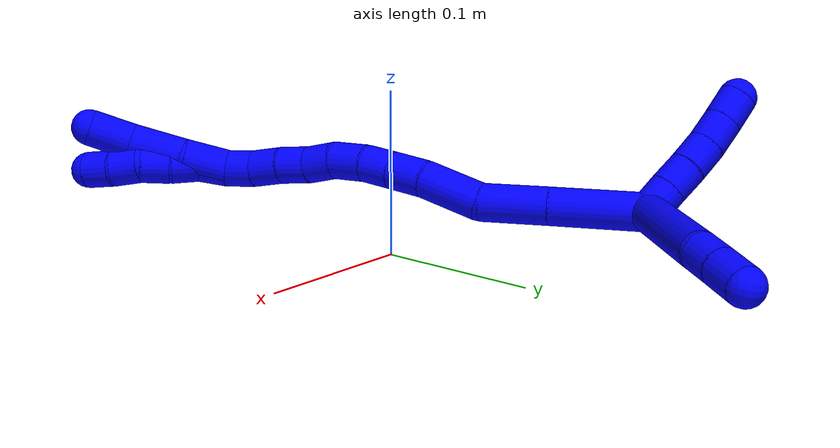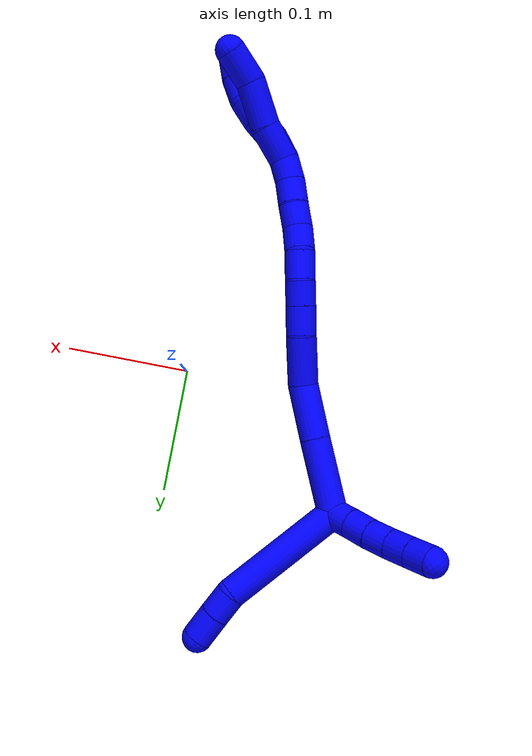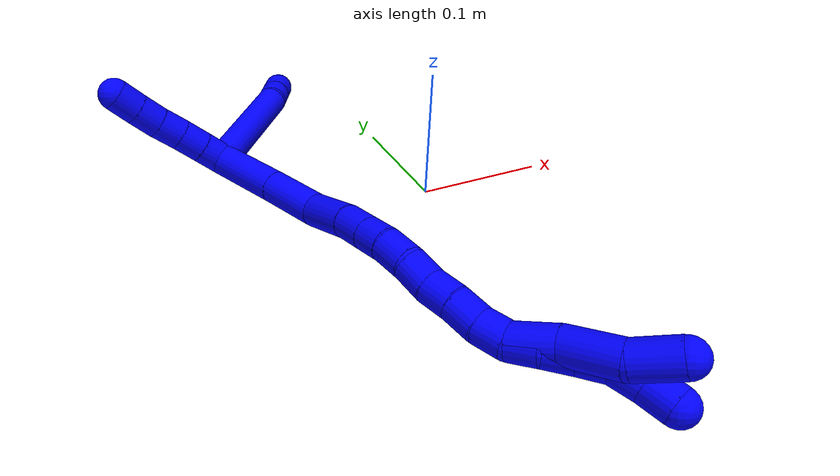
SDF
<sdf version="1.7">
 <world name="default">
  <model name="1">
   <static>0</static>
   <link name="1">
    <collision name="collision-cylinder-e_1_2_8">
     <pose>0.043706 0.028571 -0.001421 -1.62049 0.991251 -1.0334</pose>
     <geometry><cylinder><radius>0.0125</radius><length>0.10447</length></cylinder></geometry>
     <surface>
      <friction><ode><mu>1.16</mu><mu2>1.16</mu2><slip1>0</slip1><slip2>0</slip2></ode></friction>
      <contact><ode><kp>1e+06</kp><kd>1</kd><max_vel>0</max_vel><min_depth>0.001</min_depth></ode></contact>
     </surface>
    </collision>
    <visual name="visual-cylinder-e_1_2_8">
     <pose>0.043706 0.028571 -0.001421 -1.62049 0.991251 -1.0334</pose>
     <geometry><cylinder><radius>0.0125</radius><length>0.10447</length></cylinder></geometry>
     <material><ambient>0 0 1 1</ambient></material>
    </visual>
    <collision name="collision-cylinder-e_2_8_9">
     <pose>0.096751 0.061238 -0.006107 -2.24374 1.05966 -1.76497</pose>
     <geometry><cylinder><radius>0.0125</radius><length>0.021417</length></cylinder></geometry>
     <surface>
      <friction><ode><mu>1.16</mu><mu2>1.16</mu2><slip1>0</slip1><slip2>0</slip2></ode></friction>
      <contact><ode><kp>1e+06</kp><kd>1</kd><max_vel>0</max_vel><min_depth>0.001</min_depth></ode></contact>
     </surface>
    </collision>
    <visual name="visual-cylinder-e_2_8_9">
     <pose>0.096751 0.061238 -0.006107 -2.24374 1.05966 -1.76497</pose>
     <geometry><cylinder><radius>0.0125</radius><length>0.021417</length></cylinder></geometry>
     <material><ambient>0 0 1 1</ambient></material>
    </visual>
    <collision name="collision-cylinder-e_3_9_6">
     <pose>0.116647 0.069705 -0.013222 -2.29293 1.06658 -1.83517</pose>
     <geometry><cylinder><radius>0.0125</radius><length>0.024113</length></cylinder></geometry>
     <surface>
      <friction><ode><mu>1.16</mu><mu2>1.16</mu2><slip1>0</slip1><slip2>0</slip2></ode></friction>
      <contact><ode><kp>1e+06</kp><kd>1</kd><max_vel>0</max_vel><min_depth>0.001</min_depth></ode></contact>
     </surface>
    </collision>
    <visual name="visual-cylinder-e_3_9_6">
     <pose>0.116647 0.069705 -0.013222 -2.29293 1.06658 -1.83517</pose>
     <geometry><cylinder><radius>0.0125</radius><length>0.024113</length></cylinder></geometry>
     <material><ambient>0 0 1 1</ambient></material>
    </visual>
    <collision name="collision-cylinder-e_1_2_10">
     <pose>-0.006735 0.004429 -0.005918 -2.49905 -0.738948 1.72177</pose>
     <geometry><cylinder><radius>0.0125</radius><length>0.02</length></cylinder></geometry>
     <surface>
      <friction><ode><mu>1.16</mu><mu2>1.16</mu2><slip1>0</slip1><slip2>0</slip2></ode></friction>
      <contact><ode><kp>1e+06</kp><kd>1</kd><max_vel>0</max_vel><min_depth>0.001</min_depth></ode></contact>
     </surface>
    </collision>
    <visual name="visual-cylinder-e_1_2_10">
     <pose>-0.006735 0.004429 -0.005918 -2.49905 -0.738948 1.72177</pose>
     <geometry><cylinder><radius>0.0125</radius><length>0.02</length></cylinder></geometry>
     <material><ambient>0 0 1 1</ambient></material>
    </visual>
    <collision name="collision-cylinder-e_2_10_11">
     <pose>-0.020026 0.013265 -0.017968 -2.51857 -0.714954 1.71871</pose>
     <geometry><cylinder><radius>0.0125</radius><length>0.02</length></cylinder></geometry>
     <surface>
      <friction><ode><mu>1.16</mu><mu2>1.16</mu2><slip1>0</slip1><slip2>0</slip2></ode></friction>
      <contact><ode><kp>1e+06</kp><kd>1</kd><max_vel>0</max_vel><min_depth>0.001</min_depth></ode></contact>
     </surface>
    </collision>
    <visual name="visual-cylinder-e_2_10_11">
     <pose>-0.020026 0.013265 -0.017968 -2.51857 -0.714954 1.71871</pose>
     <geometry><cylinder><radius>0.0125</radius><length>0.02</length></cylinder></geometry>
     <material><ambient>0 0 1 1</ambient></material>
    </visual>
    <collision name="collision-cylinder-e_3_11_12">
     <pose>-0.03362 0.021723 -0.029935 -2.5346 -0.780805 1.84058</pose>
     <geometry><cylinder><radius>0.0125</radius><length>0.02</length></cylinder></geometry>
     <surface>
      <friction><ode><mu>1.16</mu><mu2>1.16</mu2><slip1>0</slip1><slip2>0</slip2></ode></friction>
      <contact><ode><kp>1e+06</kp><kd>1</kd><max_vel>0</max_vel><min_depth>0.001</min_depth></ode></contact>
     </surface>
    </collision>
    <visual name="visual-cylinder-e_3_11_12">
     <pose>-0.03362 0.021723 -0.029935 -2.5346 -0.780805 1.84058</pose>
     <geometry><cylinder><radius>0.0125</radius><length>0.02</length></cylinder></geometry>
     <material><ambient>0 0 1 1</ambient></material>
    </visual>
    <collision name="collision-cylinder-e_4_12_13">
     <pose>-0.047982 0.030322 -0.040838 -2.41029 -0.821705 1.69957</pose>
     <geometry><cylinder><radius>0.0125</radius><length>0.02</length></cylinder></geometry>
     <surface>
      <friction><ode><mu>1.16</mu><mu2>1.16</mu2><slip1>0</slip1><slip2>0</slip2></ode></friction>
      <contact><ode><kp>1e+06</kp><kd>1</kd><max_vel>0</max_vel><min_depth>0.001</min_depth></ode></contact>
     </surface>
    </collision>
    <visual name="visual-cylinder-e_4_12_13">
     <pose>-0.047982 0.030322 -0.040838 -2.41029 -0.821705 1.69957</pose>
     <geometry><cylinder><radius>0.0125</radius><length>0.02</length></cylinder></geometry>
     <material><ambient>0 0 1 1</ambient></material>
    </visual>
    <collision name="collision-cylinder-e_5_13_5">
     <pose>-0.062673 0.039598 -0.05074 -2.36729 -0.828274 1.64589</pose>
     <geometry><cylinder><radius>0.0125</radius><length>0.02</length></cylinder></geometry>
     <surface>
      <friction><ode><mu>1.16</mu><mu2>1.16</mu2><slip1>0</slip1><slip2>0</slip2></ode></friction>
      <contact><ode><kp>1e+06</kp><kd>1</kd><max_vel>0</max_vel><min_depth>0.001</min_depth></ode></contact>
     </surface>
    </collision>
    <visual name="visual-cylinder-e_5_13_5">
     <pose>-0.062673 0.039598 -0.05074 -2.36729 -0.828274 1.64589</pose>
     <geometry><cylinder><radius>0.0125</radius><length>0.02</length></cylinder></geometry>
     <material><ambient>0 0 1 1</ambient></material>
    </visual>
    <collision name="collision-cylinder-e_1_2_14">
     <pose>-0.007898 -0.01009 0.028397 0.341398 -0.256327 -0.044421</pose>
     <geometry><cylinder><radius>0.0125</radius><length>0.062308</length></cylinder></geometry>
     <surface>
      <friction><ode><mu>1.16</mu><mu2>1.16</mu2><slip1>0</slip1><slip2>0</slip2></ode></friction>
      <contact><ode><kp>1e+06</kp><kd>1</kd><max_vel>0</max_vel><min_depth>0.001</min_depth></ode></contact>
     </surface>
    </collision>
    <visual name="visual-cylinder-e_1_2_14">
     <pose>-0.007898 -0.01009 0.028397 0.341398 -0.256327 -0.044421</pose>
     <geometry><cylinder><radius>0.0125</radius><length>0.062308</length></cylinder></geometry>
     <material><ambient>0 0 1 1</ambient></material>
    </visual>
    <collision name="collision-cylinder-e_2_14_15">
     <pose>-0.021757 -0.027868 0.077418 0.356821 -0.264435 -0.047956</pose>
     <geometry><cylinder><radius>0.0125</radius><length>0.045606</length></cylinder></geometry>
     <surface>
      <friction><ode><mu>1.16</mu><mu2>1.16</mu2><slip1>0</slip1><slip2>0</slip2></ode></friction>
      <contact><ode><kp>1e+06</kp><kd>1</kd><max_vel>0</max_vel><min_depth>0.001</min_depth></ode></contact>
     </surface>
    </collision>
    <visual name="visual-cylinder-e_2_14_15">
     <pose>-0.021757 -0.027868 0.077418 0.356821 -0.264435 -0.047956</pose>
     <geometry><cylinder><radius>0.0125</radius><length>0.045606</length></cylinder></geometry>
     <material><ambient>0 0 1 1</ambient></material>
    </visual>
    <collision name="collision-cylinder-e_3_15_16">
     <pose>-0.038424 -0.038472 0.115464 0.165865 -0.544955 -0.046445</pose>
     <geometry><cylinder><radius>0.0125</radius><length>0.041312</length></cylinder></geometry>
     <surface>
      <friction><ode><mu>1.16</mu><mu2>1.16</mu2><slip1>0</slip1><slip2>0</slip2></ode></friction>
      <contact><ode><kp>1e+06</kp><kd>1</kd><max_vel>0</max_vel><min_depth>0.001</min_depth></ode></contact>
     </surface>
    </collision>
    <visual name="visual-cylinder-e_3_15_16">
     <pose>-0.038424 -0.038472 0.115464 0.165865 -0.544955 -0.046445</pose>
     <geometry><cylinder><radius>0.0125</radius><length>0.041312</length></cylinder></geometry>
     <material><ambient>0 0 1 1</ambient></material>
    </visual>
    <collision name="collision-cylinder-e_4_16_17">
     <pose>-0.054973 -0.044773 0.142826 0.328102 -0.507644 -0.085834</pose>
     <geometry><cylinder><radius>0.0125</radius><length>0.024033</length></cylinder></geometry>
     <surface>
      <friction><ode><mu>1.16</mu><mu2>1.16</mu2><slip1>0</slip1><slip2>0</slip2></ode></friction>
      <contact><ode><kp>1e+06</kp><kd>1</kd><max_vel>0</max_vel><min_depth>0.001</min_depth></ode></contact>
     </surface>
    </collision>
    <visual name="visual-cylinder-e_4_16_17">
     <pose>-0.054973 -0.044773 0.142826 0.328102 -0.507644 -0.085834</pose>
     <geometry><cylinder><radius>0.0125</radius><length>0.024033</length></cylinder></geometry>
     <material><ambient>0 0 1 1</ambient></material>
    </visual>
    <collision name="collision-cylinder-e_5_17_18">
     <pose>-0.065722 -0.051036 0.161324 0.324574 -0.497867 -0.083193</pose>
     <geometry><cylinder><radius>0.0125</radius><length>0.020552</length></cylinder></geometry>
     <surface>
      <friction><ode><mu>1.16</mu><mu2>1.16</mu2><slip1>0</slip1><slip2>0</slip2></ode></friction>
      <contact><ode><kp>1e+06</kp><kd>1</kd><max_vel>0</max_vel><min_depth>0.001</min_depth></ode></contact>
     </surface>
    </collision>
    <visual name="visual-cylinder-e_5_17_18">
     <pose>-0.065722 -0.051036 0.161324 0.324574 -0.497867 -0.083193</pose>
     <geometry><cylinder><radius>0.0125</radius><length>0.020552</length></cylinder></geometry>
     <material><ambient>0 0 1 1</ambient></material>
    </visual>
    <collision name="collision-cylinder-e_6_18_19">
     <pose>-0.075656 -0.058921 0.179521 0.478931 -0.433377 -0.107394</pose>
     <geometry><cylinder><radius>0.0125</radius><length>0.023938</length></cylinder></geometry>
     <surface>
      <friction><ode><mu>1.16</mu><mu2>1.16</mu2><slip1>0</slip1><slip2>0</slip2></ode></friction>
      <contact><ode><kp>1e+06</kp><kd>1</kd><max_vel>0</max_vel><min_depth>0.001</min_depth></ode></contact>
     </surface>
    </collision>
    <visual name="visual-cylinder-e_6_18_19">
     <pose>-0.075656 -0.058921 0.179521 0.478931 -0.433377 -0.107394</pose>
     <geometry><cylinder><radius>0.0125</radius><length>0.023938</length></cylinder></geometry>
     <material><ambient>0 0 1 1</ambient></material>
    </visual>
    <collision name="collision-cylinder-e_7_19_20">
     <pose>-0.08324 -0.069911 0.197172 0.641626 -0.250464 -0.083616</pose>
     <geometry><cylinder><radius>0.0125</radius><length>0.020642</length></cylinder></geometry>
     <surface>
      <friction><ode><mu>1.16</mu><mu2>1.16</mu2><slip1>0</slip1><slip2>0</slip2></ode></friction>
      <contact><ode><kp>1e+06</kp><kd>1</kd><max_vel>0</max_vel><min_depth>0.001</min_depth></ode></contact>
     </surface>
    </collision>
    <visual name="visual-cylinder-e_7_19_20">
     <pose>-0.08324 -0.069911 0.197172 0.641626 -0.250464 -0.083616</pose>
     <geometry><cylinder><radius>0.0125</radius><length>0.020642</length></cylinder></geometry>
     <material><ambient>0 0 1 1</ambient></material>
    </visual>
    <collision name="collision-cylinder-e_8_20_21">
     <pose>-0.088492 -0.080186 0.214011 0.452354 -0.267812 -0.061978</pose>
     <geometry><cylinder><radius>0.0125</radius><length>0.020358</length></cylinder></geometry>
     <surface>
      <friction><ode><mu>1.16</mu><mu2>1.16</mu2><slip1>0</slip1><slip2>0</slip2></ode></friction>
      <contact><ode><kp>1e+06</kp><kd>1</kd><max_vel>0</max_vel><min_depth>0.001</min_depth></ode></contact>
     </surface>
    </collision>
    <visual name="visual-cylinder-e_8_20_21">
     <pose>-0.088492 -0.080186 0.214011 0.452354 -0.267812 -0.061978</pose>
     <geometry><cylinder><radius>0.0125</radius><length>0.020358</length></cylinder></geometry>
     <material><ambient>0 0 1 1</ambient></material>
    </visual>
    <collision name="collision-cylinder-e_9_21_22">
     <pose>-0.09373 -0.08998 0.231555 0.563267 -0.242042 -0.070343</pose>
     <geometry><cylinder><radius>0.0125</radius><length>0.021232</length></cylinder></geometry>
     <surface>
      <friction><ode><mu>1.16</mu><mu2>1.16</mu2><slip1>0</slip1><slip2>0</slip2></ode></friction>
      <contact><ode><kp>1e+06</kp><kd>1</kd><max_vel>0</max_vel><min_depth>0.001</min_depth></ode></contact>
     </surface>
    </collision>
    <visual name="visual-cylinder-e_9_21_22">
     <pose>-0.09373 -0.08998 0.231555 0.563267 -0.242042 -0.070343</pose>
     <geometry><cylinder><radius>0.0125</radius><length>0.021232</length></cylinder></geometry>
     <material><ambient>0 0 1 1</ambient></material>
    </visual>
    <collision name="collision-cylinder-e_10_22_1">
     <pose>-0.098332 -0.098961 0.249426 0.363046 -0.207043 -0.038133</pose>
     <geometry><cylinder><radius>0.0125</radius><length>0.020019</length></cylinder></geometry>
     <surface>
      <friction><ode><mu>1.16</mu><mu2>1.16</mu2><slip1>0</slip1><slip2>0</slip2></ode></friction>
      <contact><ode><kp>1e+06</kp><kd>1</kd><max_vel>0</max_vel><min_depth>0.001</min_depth></ode></contact>
     </surface>
    </collision>
    <visual name="visual-cylinder-e_10_22_1">
     <pose>-0.098332 -0.098961 0.249426 0.363046 -0.207043 -0.038133</pose>
     <geometry><cylinder><radius>0.0125</radius><length>0.020019</length></cylinder></geometry>
     <material><ambient>0 0 1 1</ambient></material>
    </visual>
    <collision name="collision-cylinder-e_1_1_23">
     <pose>-0.102145 -0.101255 0.274116 -0.076131 -0.11222 0.004278</pose>
     <geometry><cylinder><radius>0.0125</radius><length>0.031353</length></cylinder></geometry>
     <surface>
      <friction><ode><mu>1.16</mu><mu2>1.16</mu2><slip1>0</slip1><slip2>0</slip2></ode></friction>
      <contact><ode><kp>1e+06</kp><kd>1</kd><max_vel>0</max_vel><min_depth>0.001</min_depth></ode></contact>
     </surface>
    </collision>
    <visual name="visual-cylinder-e_1_1_23">
     <pose>-0.102145 -0.101255 0.274116 -0.076131 -0.11222 0.004278</pose>
     <geometry><cylinder><radius>0.0125</radius><length>0.031353</length></cylinder></geometry>
     <material><ambient>0 0 1 1</ambient></material>
    </visual>
    <collision name="collision-cylinder-e_2_23_24">
     <pose>-0.109351 -0.101138 0.307933 0.058328 -0.289247 -0.008497</pose>
     <geometry><cylinder><radius>0.0125</radius><length>0.038218</length></cylinder></geometry>
     <surface>
      <friction><ode><mu>1.16</mu><mu2>1.16</mu2><slip1>0</slip1><slip2>0</slip2></ode></friction>
      <contact><ode><kp>1e+06</kp><kd>1</kd><max_vel>0</max_vel><min_depth>0.001</min_depth></ode></contact>
     </surface>
    </collision>
    <visual name="visual-cylinder-e_2_23_24">
     <pose>-0.109351 -0.101138 0.307933 0.058328 -0.289247 -0.008497</pose>
     <geometry><cylinder><radius>0.0125</radius><length>0.038218</length></cylinder></geometry>
     <material><ambient>0 0 1 1</ambient></material>
    </visual>
    <collision name="collision-cylinder-e_3_24_4">
     <pose>-0.116238 -0.099321 0.341086 -0.191595 -0.094542 0.009091</pose>
     <geometry><cylinder><radius>0.0125</radius><length>0.030429</length></cylinder></geometry>
     <surface>
      <friction><ode><mu>1.16</mu><mu2>1.16</mu2><slip1>0</slip1><slip2>0</slip2></ode></friction>
      <contact><ode><kp>1e+06</kp><kd>1</kd><max_vel>0</max_vel><min_depth>0.001</min_depth></ode></contact>
     </surface>
    </collision>
    <visual name="visual-cylinder-e_3_24_4">
     <pose>-0.116238 -0.099321 0.341086 -0.191595 -0.094542 0.009091</pose>
     <geometry><cylinder><radius>0.0125</radius><length>0.030429</length></cylinder></geometry>
     <material><ambient>0 0 1 1</ambient></material>
    </visual>
    <collision name="collision-cylinder-e_1_1_25">
     <pose>-0.101528 -0.102838 0.26851 0.040075 -0.114112 -0.002289</pose>
     <geometry><cylinder><radius>0.0125</radius><length>0.02</length></cylinder></geometry>
     <surface>
      <friction><ode><mu>1.16</mu><mu2>1.16</mu2><slip1>0</slip1><slip2>0</slip2></ode></friction>
      <contact><ode><kp>1e+06</kp><kd>1</kd><max_vel>0</max_vel><min_depth>0.001</min_depth></ode></contact>
     </surface>
    </collision>
    <visual name="visual-cylinder-e_1_1_25">
     <pose>-0.101528 -0.102838 0.26851 0.040075 -0.114112 -0.002289</pose>
     <geometry><cylinder><radius>0.0125</radius><length>0.02</length></cylinder></geometry>
     <material><ambient>0 0 1 1</ambient></material>
    </visual>
    <collision name="collision-cylinder-e_2_25_26">
     <pose>-0.101065 -0.104456 0.288233 0.12389 0.160902 0.010001</pose>
     <geometry><cylinder><radius>0.0125</radius><length>0.02</length></cylinder></geometry>
     <surface>
      <friction><ode><mu>1.16</mu><mu2>1.16</mu2><slip1>0</slip1><slip2>0</slip2></ode></friction>
      <contact><ode><kp>1e+06</kp><kd>1</kd><max_vel>0</max_vel><min_depth>0.001</min_depth></ode></contact>
     </surface>
    </collision>
    <visual name="visual-cylinder-e_2_25_26">
     <pose>-0.101065 -0.104456 0.288233 0.12389 0.160902 0.010001</pose>
     <geometry><cylinder><radius>0.0125</radius><length>0.02</length></cylinder></geometry>
     <material><ambient>0 0 1 1</ambient></material>
    </visual>
    <collision name="collision-cylinder-e_3_26_27">
     <pose>-0.099381 -0.106845 0.307959 0.117207 0.008161 0.000479</pose>
     <geometry><cylinder><radius>0.0125</radius><length>0.02</length></cylinder></geometry>
     <surface>
      <friction><ode><mu>1.16</mu><mu2>1.16</mu2><slip1>0</slip1><slip2>0</slip2></ode></friction>
      <contact><ode><kp>1e+06</kp><kd>1</kd><max_vel>0</max_vel><min_depth>0.001</min_depth></ode></contact>
     </surface>
    </collision>
    <visual name="visual-cylinder-e_3_26_27">
     <pose>-0.099381 -0.106845 0.307959 0.117207 0.008161 0.000479</pose>
     <geometry><cylinder><radius>0.0125</radius><length>0.02</length></cylinder></geometry>
     <material><ambient>0 0 1 1</ambient></material>
    </visual>
    <collision name="collision-cylinder-e_4_27_28">
     <pose>-0.100196 -0.112248 0.326905 0.43902 -0.089784 -0.020044</pose>
     <geometry><cylinder><radius>0.0125</radius><length>0.02</length></cylinder></geometry>
     <surface>
      <friction><ode><mu>1.16</mu><mu2>1.16</mu2><slip1>0</slip1><slip2>0</slip2></ode></friction>
      <contact><ode><kp>1e+06</kp><kd>1</kd><max_vel>0</max_vel><min_depth>0.001</min_depth></ode></contact>
     </surface>
    </collision>
    <visual name="visual-cylinder-e_4_27_28">
     <pose>-0.100196 -0.112248 0.326905 0.43902 -0.089784 -0.020044</pose>
     <geometry><cylinder><radius>0.0125</radius><length>0.02</length></cylinder></geometry>
     <material><ambient>0 0 1 1</ambient></material>
    </visual>
    <collision name="collision-cylinder-e_5_28_3">
     <pose>-0.103542 -0.121035 0.34448 0.488966 -0.247439 -0.062026</pose>
     <geometry><cylinder><radius>0.0125</radius><length>0.02</length></cylinder></geometry>
     <surface>
      <friction><ode><mu>1.16</mu><mu2>1.16</mu2><slip1>0</slip1><slip2>0</slip2></ode></friction>
      <contact><ode><kp>1e+06</kp><kd>1</kd><max_vel>0</max_vel><min_depth>0.001</min_depth></ode></contact>
     </surface>
    </collision>
    <visual name="visual-cylinder-e_5_28_3">
     <pose>-0.103542 -0.121035 0.34448 0.488966 -0.247439 -0.062026</pose>
     <geometry><cylinder><radius>0.0125</radius><length>0.02</length></cylinder></geometry>
     <material><ambient>0 0 1 1</ambient></material>
    </visual>
    <collision name="collision-sphere-3">
     <pose>-0.105991 -0.125589 0.353039 0 -0 0</pose>
     <geometry><sphere><radius>0.0125</radius></sphere></geometry>
     <surface>
      <friction><ode><mu>1.16</mu><mu2>1.16</mu2><slip1>0</slip1><slip2>0</slip2></ode></friction>
      <contact><ode><kp>1e+06</kp><kd>1</kd><max_vel>0</max_vel><min_depth>0.001</min_depth></ode></contact>
     </surface>
    </collision>
    <visual name="visual-sphere-3">
     <pose>-0.105991 -0.125589 0.353039 0 -0 0</pose>
     <geometry><sphere><radius>0.0125</radius></sphere></geometry>
     <material><ambient>0 0 1 1</ambient></material>
    </visual>
    <collision name="collision-sphere-28">
     <pose>-0.101093 -0.116481 0.33592 0 -0 0</pose>
     <geometry><sphere><radius>0.0125</radius></sphere></geometry>
     <surface>
      <friction><ode><mu>1.16</mu><mu2>1.16</mu2><slip1>0</slip1><slip2>0</slip2></ode></friction>
      <contact><ode><kp>1e+06</kp><kd>1</kd><max_vel>0</max_vel><min_depth>0.001</min_depth></ode></contact>
     </surface>
    </collision>
    <visual name="visual-sphere-28">
     <pose>-0.101093 -0.116481 0.33592 0 -0 0</pose>
     <geometry><sphere><radius>0.0125</radius></sphere></geometry>
     <material><ambient>0 0 1 1</ambient></material>
    </visual>
    <collision name="collision-sphere-27">
     <pose>-0.099299 -0.108014 0.31789 0 -0 0</pose>
     <geometry><sphere><radius>0.0125</radius></sphere></geometry>
     <surface>
      <friction><ode><mu>1.16</mu><mu2>1.16</mu2><slip1>0</slip1><slip2>0</slip2></ode></friction>
      <contact><ode><kp>1e+06</kp><kd>1</kd><max_vel>0</max_vel><min_depth>0.001</min_depth></ode></contact>
     </surface>
    </collision>
    <visual name="visual-sphere-27">
     <pose>-0.099299 -0.108014 0.31789 0 -0 0</pose>
     <geometry><sphere><radius>0.0125</radius></sphere></geometry>
     <material><ambient>0 0 1 1</ambient></material>
    </visual>
    <collision name="collision-sphere-26">
     <pose>-0.099463 -0.105676 0.298028 0 -0 0</pose>
     <geometry><sphere><radius>0.0125</radius></sphere></geometry>
     <surface>
      <friction><ode><mu>1.16</mu><mu2>1.16</mu2><slip1>0</slip1><slip2>0</slip2></ode></friction>
      <contact><ode><kp>1e+06</kp><kd>1</kd><max_vel>0</max_vel><min_depth>0.001</min_depth></ode></contact>
     </surface>
    </collision>
    <visual name="visual-sphere-26">
     <pose>-0.099463 -0.105676 0.298028 0 -0 0</pose>
     <geometry><sphere><radius>0.0125</radius></sphere></geometry>
     <material><ambient>0 0 1 1</ambient></material>
    </visual>
    <collision name="collision-sphere-25">
     <pose>-0.102667 -0.103236 0.278437 0 -0 0</pose>
     <geometry><sphere><radius>0.0125</radius></sphere></geometry>
     <surface>
      <friction><ode><mu>1.16</mu><mu2>1.16</mu2><slip1>0</slip1><slip2>0</slip2></ode></friction>
      <contact><ode><kp>1e+06</kp><kd>1</kd><max_vel>0</max_vel><min_depth>0.001</min_depth></ode></contact>
     </surface>
    </collision>
    <visual name="visual-sphere-25">
     <pose>-0.102667 -0.103236 0.278437 0 -0 0</pose>
     <geometry><sphere><radius>0.0125</radius></sphere></geometry>
     <material><ambient>0 0 1 1</ambient></material>
    </visual>
    <collision name="collision-sphere-4">
     <pose>-0.117674 -0.096437 0.355956 0 -0 0</pose>
     <geometry><sphere><radius>0.0125</radius></sphere></geometry>
     <surface>
      <friction><ode><mu>1.16</mu><mu2>1.16</mu2><slip1>0</slip1><slip2>0</slip2></ode></friction>
      <contact><ode><kp>1e+06</kp><kd>1</kd><max_vel>0</max_vel><min_depth>0.001</min_depth></ode></contact>
     </surface>
    </collision>
    <visual name="visual-sphere-4">
     <pose>-0.117674 -0.096437 0.355956 0 -0 0</pose>
     <geometry><sphere><radius>0.0125</radius></sphere></geometry>
     <material><ambient>0 0 1 1</ambient></material>
    </visual>
    <collision name="collision-sphere-24">
     <pose>-0.114801 -0.102206 0.326217 0 -0 0</pose>
     <geometry><sphere><radius>0.0125</radius></sphere></geometry>
     <surface>
      <friction><ode><mu>1.16</mu><mu2>1.16</mu2><slip1>0</slip1><slip2>0</slip2></ode></friction>
      <contact><ode><kp>1e+06</kp><kd>1</kd><max_vel>0</max_vel><min_depth>0.001</min_depth></ode></contact>
     </surface>
    </collision>
    <visual name="visual-sphere-24">
     <pose>-0.114801 -0.102206 0.326217 0 -0 0</pose>
     <geometry><sphere><radius>0.0125</radius></sphere></geometry>
     <material><ambient>0 0 1 1</ambient></material>
    </visual>
    <collision name="collision-sphere-23">
     <pose>-0.103901 -0.10007 0.289649 0 -0 0</pose>
     <geometry><sphere><radius>0.0125</radius></sphere></geometry>
     <surface>
      <friction><ode><mu>1.16</mu><mu2>1.16</mu2><slip1>0</slip1><slip2>0</slip2></ode></friction>
      <contact><ode><kp>1e+06</kp><kd>1</kd><max_vel>0</max_vel><min_depth>0.001</min_depth></ode></contact>
     </surface>
    </collision>
    <visual name="visual-sphere-23">
     <pose>-0.103901 -0.10007 0.289649 0 -0 0</pose>
     <geometry><sphere><radius>0.0125</radius></sphere></geometry>
     <material><ambient>0 0 1 1</ambient></material>
    </visual>
    <collision name="collision-sphere-1">
     <pose>-0.10039 -0.10244 0.258583 0 -0 0</pose>
     <geometry><sphere><radius>0.0125</radius></sphere></geometry>
     <surface>
      <friction><ode><mu>1.16</mu><mu2>1.16</mu2><slip1>0</slip1><slip2>0</slip2></ode></friction>
      <contact><ode><kp>1e+06</kp><kd>1</kd><max_vel>0</max_vel><min_depth>0.001</min_depth></ode></contact>
     </surface>
    </collision>
    <visual name="visual-sphere-1">
     <pose>-0.10039 -0.10244 0.258583 0 -0 0</pose>
     <geometry><sphere><radius>0.0125</radius></sphere></geometry>
     <material><ambient>0 0 1 1</ambient></material>
    </visual>
    <collision name="collision-sphere-22">
     <pose>-0.096274 -0.095483 0.240269 0 -0 0</pose>
     <geometry><sphere><radius>0.0125</radius></sphere></geometry>
     <surface>
      <friction><ode><mu>1.16</mu><mu2>1.16</mu2><slip1>0</slip1><slip2>0</slip2></ode></friction>
      <contact><ode><kp>1e+06</kp><kd>1</kd><max_vel>0</max_vel><min_depth>0.001</min_depth></ode></contact>
     </surface>
    </collision>
    <visual name="visual-sphere-22">
     <pose>-0.096274 -0.095483 0.240269 0 -0 0</pose>
     <geometry><sphere><radius>0.0125</radius></sphere></geometry>
     <material><ambient>0 0 1 1</ambient></material>
    </visual>
    <collision name="collision-sphere-21">
     <pose>-0.091185 -0.084476 0.22284 0 -0 0</pose>
     <geometry><sphere><radius>0.0125</radius></sphere></geometry>
     <surface>
      <friction><ode><mu>1.16</mu><mu2>1.16</mu2><slip1>0</slip1><slip2>0</slip2></ode></friction>
      <contact><ode><kp>1e+06</kp><kd>1</kd><max_vel>0</max_vel><min_depth>0.001</min_depth></ode></contact>
     </surface>
    </collision>
    <visual name="visual-sphere-21">
     <pose>-0.091185 -0.084476 0.22284 0 -0 0</pose>
     <geometry><sphere><radius>0.0125</radius></sphere></geometry>
     <material><ambient>0 0 1 1</ambient></material>
    </visual>
    <collision name="collision-sphere-11">
     <pose>-0.026582 0.017671 -0.0241 0 -0 0</pose>
     <geometry><sphere><radius>0.0125</radius></sphere></geometry>
     <surface>
      <friction><ode><mu>1.16</mu><mu2>1.16</mu2><slip1>0</slip1><slip2>0</slip2></ode></friction>
      <contact><ode><kp>1e+06</kp><kd>1</kd><max_vel>0</max_vel><min_depth>0.001</min_depth></ode></contact>
     </surface>
    </collision>
    <visual name="visual-sphere-11">
     <pose>-0.026582 0.017671 -0.0241 0 -0 0</pose>
     <geometry><sphere><radius>0.0125</radius></sphere></geometry>
     <material><ambient>0 0 1 1</ambient></material>
    </visual>
    <collision name="collision-sphere-10">
     <pose>-0.01347 0.008859 -0.011835 0 -0 0</pose>
     <geometry><sphere><radius>0.0125</radius></sphere></geometry>
     <surface>
      <friction><ode><mu>1.16</mu><mu2>1.16</mu2><slip1>0</slip1><slip2>0</slip2></ode></friction>
      <contact><ode><kp>1e+06</kp><kd>1</kd><max_vel>0</max_vel><min_depth>0.001</min_depth></ode></contact>
     </surface>
    </collision>
    <visual name="visual-sphere-10">
     <pose>-0.01347 0.008859 -0.011835 0 -0 0</pose>
     <geometry><sphere><radius>0.0125</radius></sphere></geometry>
     <material><ambient>0 0 1 1</ambient></material>
    </visual>
    <collision name="collision-sphere-6">
     <pose>0.127203 0.074076 -0.017072 0 -0 0</pose>
     <geometry><sphere><radius>0.0125</radius></sphere></geometry>
     <surface>
      <friction><ode><mu>1.16</mu><mu2>1.16</mu2><slip1>0</slip1><slip2>0</slip2></ode></friction>
      <contact><ode><kp>1e+06</kp><kd>1</kd><max_vel>0</max_vel><min_depth>0.001</min_depth></ode></contact>
     </surface>
    </collision>
    <visual name="visual-sphere-6">
     <pose>0.127203 0.074076 -0.017072 0 -0 0</pose>
     <geometry><sphere><radius>0.0125</radius></sphere></geometry>
     <material><ambient>0 0 1 1</ambient></material>
    </visual>
    <collision name="collision-sphere-9">
     <pose>0.106091 0.065334 -0.009372 0 -0 0</pose>
     <geometry><sphere><radius>0.0125</radius></sphere></geometry>
     <surface>
      <friction><ode><mu>1.16</mu><mu2>1.16</mu2><slip1>0</slip1><slip2>0</slip2></ode></friction>
      <contact><ode><kp>1e+06</kp><kd>1</kd><max_vel>0</max_vel><min_depth>0.001</min_depth></ode></contact>
     </surface>
    </collision>
    <visual name="visual-sphere-9">
     <pose>0.106091 0.065334 -0.009372 0 -0 0</pose>
     <geometry><sphere><radius>0.0125</radius></sphere></geometry>
     <material><ambient>0 0 1 1</ambient></material>
    </visual>
    <collision name="collision-sphere-2">
     <geometry><sphere><radius>0.0125</radius></sphere></geometry>
     <surface>
      <friction><ode><mu>1.16</mu><mu2>1.16</mu2><slip1>0</slip1><slip2>0</slip2></ode></friction>
      <contact><ode><kp>1e+06</kp><kd>1</kd><max_vel>0</max_vel><min_depth>0.001</min_depth></ode></contact>
     </surface>
    </collision>
    <visual name="visual-sphere-2">
     <geometry><sphere><radius>0.0125</radius></sphere></geometry>
     <material><ambient>0 0 1 1</ambient></material>
    </visual>
    <collision name="collision-sphere-19">
     <pose>-0.080682 -0.063926 0.189162 0 -0 0</pose>
     <geometry><sphere><radius>0.0125</radius></sphere></geometry>
     <surface>
      <friction><ode><mu>1.16</mu><mu2>1.16</mu2><slip1>0</slip1><slip2>0</slip2></ode></friction>
      <contact><ode><kp>1e+06</kp><kd>1</kd><max_vel>0</max_vel><min_depth>0.001</min_depth></ode></contact>
     </surface>
    </collision>
    <visual name="visual-sphere-19">
     <pose>-0.080682 -0.063926 0.189162 0 -0 0</pose>
     <geometry><sphere><radius>0.0125</radius></sphere></geometry>
     <material><ambient>0 0 1 1</ambient></material>
    </visual>
    <collision name="collision-sphere-8">
     <pose>0.087411 0.057142 -0.002842 0 -0 0</pose>
     <geometry><sphere><radius>0.0125</radius></sphere></geometry>
     <surface>
      <friction><ode><mu>1.16</mu><mu2>1.16</mu2><slip1>0</slip1><slip2>0</slip2></ode></friction>
      <contact><ode><kp>1e+06</kp><kd>1</kd><max_vel>0</max_vel><min_depth>0.001</min_depth></ode></contact>
     </surface>
    </collision>
    <visual name="visual-sphere-8">
     <pose>0.087411 0.057142 -0.002842 0 -0 0</pose>
     <geometry><sphere><radius>0.0125</radius></sphere></geometry>
     <material><ambient>0 0 1 1</ambient></material>
    </visual>
    <collision name="collision-sphere-12">
     <pose>-0.040659 0.025775 -0.035769 0 -0 0</pose>
     <geometry><sphere><radius>0.0125</radius></sphere></geometry>
     <surface>
      <friction><ode><mu>1.16</mu><mu2>1.16</mu2><slip1>0</slip1><slip2>0</slip2></ode></friction>
      <contact><ode><kp>1e+06</kp><kd>1</kd><max_vel>0</max_vel><min_depth>0.001</min_depth></ode></contact>
     </surface>
    </collision>
    <visual name="visual-sphere-12">
     <pose>-0.040659 0.025775 -0.035769 0 -0 0</pose>
     <geometry><sphere><radius>0.0125</radius></sphere></geometry>
     <material><ambient>0 0 1 1</ambient></material>
    </visual>
    <collision name="collision-sphere-13">
     <pose>-0.055305 0.03487 -0.045906 0 -0 0</pose>
     <geometry><sphere><radius>0.0125</radius></sphere></geometry>
     <surface>
      <friction><ode><mu>1.16</mu><mu2>1.16</mu2><slip1>0</slip1><slip2>0</slip2></ode></friction>
      <contact><ode><kp>1e+06</kp><kd>1</kd><max_vel>0</max_vel><min_depth>0.001</min_depth></ode></contact>
     </surface>
    </collision>
    <visual name="visual-sphere-13">
     <pose>-0.055305 0.03487 -0.045906 0 -0 0</pose>
     <geometry><sphere><radius>0.0125</radius></sphere></geometry>
     <material><ambient>0 0 1 1</ambient></material>
    </visual>
    <collision name="collision-sphere-5">
     <pose>-0.07004 0.044326 -0.055574 0 -0 0</pose>
     <geometry><sphere><radius>0.0125</radius></sphere></geometry>
     <surface>
      <friction><ode><mu>1.16</mu><mu2>1.16</mu2><slip1>0</slip1><slip2>0</slip2></ode></friction>
      <contact><ode><kp>1e+06</kp><kd>1</kd><max_vel>0</max_vel><min_depth>0.001</min_depth></ode></contact>
     </surface>
    </collision>
    <visual name="visual-sphere-5">
     <pose>-0.07004 0.044326 -0.055574 0 -0 0</pose>
     <geometry><sphere><radius>0.0125</radius></sphere></geometry>
     <material><ambient>0 0 1 1</ambient></material>
    </visual>
    <collision name="collision-sphere-14">
     <pose>-0.015797 -0.020179 0.056794 0 -0 0</pose>
     <geometry><sphere><radius>0.0125</radius></sphere></geometry>
     <surface>
      <friction><ode><mu>1.16</mu><mu2>1.16</mu2><slip1>0</slip1><slip2>0</slip2></ode></friction>
      <contact><ode><kp>1e+06</kp><kd>1</kd><max_vel>0</max_vel><min_depth>0.001</min_depth></ode></contact>
     </surface>
    </collision>
    <visual name="visual-sphere-14">
     <pose>-0.015797 -0.020179 0.056794 0 -0 0</pose>
     <geometry><sphere><radius>0.0125</radius></sphere></geometry>
     <material><ambient>0 0 1 1</ambient></material>
    </visual>
    <collision name="collision-sphere-15">
     <pose>-0.027717 -0.035556 0.098042 0 -0 0</pose>
     <geometry><sphere><radius>0.0125</radius></sphere></geometry>
     <surface>
      <friction><ode><mu>1.16</mu><mu2>1.16</mu2><slip1>0</slip1><slip2>0</slip2></ode></friction>
      <contact><ode><kp>1e+06</kp><kd>1</kd><max_vel>0</max_vel><min_depth>0.001</min_depth></ode></contact>
     </surface>
    </collision>
    <visual name="visual-sphere-15">
     <pose>-0.027717 -0.035556 0.098042 0 -0 0</pose>
     <geometry><sphere><radius>0.0125</radius></sphere></geometry>
     <material><ambient>0 0 1 1</ambient></material>
    </visual>
    <collision name="collision-sphere-16">
     <pose>-0.049132 -0.041389 0.132885 0 -0 0</pose>
     <geometry><sphere><radius>0.0125</radius></sphere></geometry>
     <surface>
      <friction><ode><mu>1.16</mu><mu2>1.16</mu2><slip1>0</slip1><slip2>0</slip2></ode></friction>
      <contact><ode><kp>1e+06</kp><kd>1</kd><max_vel>0</max_vel><min_depth>0.001</min_depth></ode></contact>
     </surface>
    </collision>
    <visual name="visual-sphere-16">
     <pose>-0.049132 -0.041389 0.132885 0 -0 0</pose>
     <geometry><sphere><radius>0.0125</radius></sphere></geometry>
     <material><ambient>0 0 1 1</ambient></material>
    </visual>
    <collision name="collision-sphere-17">
     <pose>-0.060815 -0.048157 0.152767 0 -0 0</pose>
     <geometry><sphere><radius>0.0125</radius></sphere></geometry>
     <surface>
      <friction><ode><mu>1.16</mu><mu2>1.16</mu2><slip1>0</slip1><slip2>0</slip2></ode></friction>
      <contact><ode><kp>1e+06</kp><kd>1</kd><max_vel>0</max_vel><min_depth>0.001</min_depth></ode></contact>
     </surface>
    </collision>
    <visual name="visual-sphere-17">
     <pose>-0.060815 -0.048157 0.152767 0 -0 0</pose>
     <geometry><sphere><radius>0.0125</radius></sphere></geometry>
     <material><ambient>0 0 1 1</ambient></material>
    </visual>
    <collision name="collision-sphere-18">
     <pose>-0.07063 -0.053915 0.169881 0 -0 0</pose>
     <geometry><sphere><radius>0.0125</radius></sphere></geometry>
     <surface>
      <friction><ode><mu>1.16</mu><mu2>1.16</mu2><slip1>0</slip1><slip2>0</slip2></ode></friction>
      <contact><ode><kp>1e+06</kp><kd>1</kd><max_vel>0</max_vel><min_depth>0.001</min_depth></ode></contact>
     </surface>
    </collision>
    <visual name="visual-sphere-18">
     <pose>-0.07063 -0.053915 0.169881 0 -0 0</pose>
     <geometry><sphere><radius>0.0125</radius></sphere></geometry>
     <material><ambient>0 0 1 1</ambient></material>
    </visual>
    <collision name="collision-sphere-20">
     <pose>-0.085798 -0.075895 0.205183 0 -0 0</pose>
     <geometry><sphere><radius>0.0125</radius></sphere></geometry>
     <surface>
      <friction><ode><mu>1.16</mu><mu2>1.16</mu2><slip1>0</slip1><slip2>0</slip2></ode></friction>
      <contact><ode><kp>1e+06</kp><kd>1</kd><max_vel>0</max_vel><min_depth>0.001</min_depth></ode></contact>
     </surface>
    </collision>
    <visual name="visual-sphere-20">
     <pose>-0.085798 -0.075895 0.205183 0 -0 0</pose>
     <geometry><sphere><radius>0.0125</radius></sphere></geometry>
     <material><ambient>0 0 1 1</ambient></material>
    </visual>
    <inertial>
     <pose>-0.040048 -0.035784 0.129879 0 -0 0</pose>
     <mass>0.75</mass>
     <inertia><ixx>4.4e-05</ixx><ixy>0</ixy><ixz>0</ixz><iyy>9.8e-05</iyy><iyz>0</iyz><izz>-7.4e-05</izz></inertia>
    </inertial>
   </link>
   <pose>-0.139654 0.091943 0.01337 1.39521 0.515789 0.720988</pose>
  </model>
 </world>
</sdf>
